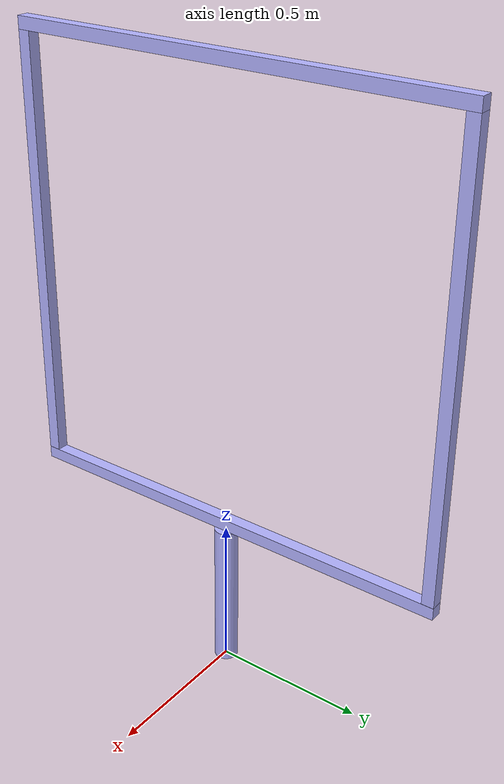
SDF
<?xml version="1.0" ?>
<sdf version="1.8">
<model name="window_on_post">

        <pose>0 0 0.25 0 0 0</pose>
        <static>true</static>

        <link name="base_ring_link">
            <pose>0 0 0 0 0 0</pose>
            <inertial>
                <mass>1.0</mass>
            </inertial>
            <collision name="collision">
                <geometry>
                    <cylinder>
                        <radius>0.038</radius>
                        <length>0.5</length>
                    </cylinder>
                </geometry>
            </collision>
            <visual name="visual">
                <geometry>
                    <cylinder>
                        <radius>0.038</radius>
                        <length>0.5</length>
                    </cylinder>
                </geometry>
                <material>
                    <ambient>0.7 0.7 1.0 1</ambient>
                    <diffuse>0.7 0.7 1.0 1</diffuse>
                    <specular>0.7 0.7 1.0 1</specular>
                </material>
            </visual>
        </link>

        <link name="top_beam">
            <pose>0 0 1.735 0 0 0</pose>
            <visual name="visual">
              <geometry>
                <box><size>0.04 1.5 0.04</size></box>
              </geometry>
              <material> <ambient>0.7 0.7 1.0 1</ambient>
                <diffuse>0.7 0.7 1.0 1</diffuse>
                <specular>0.7 0.7 1.0 1</specular>
              </material>
            </visual>
            <collision name="collision">
              <geometry><box><size>0.04 1.5 0.04</size></box></geometry>
            </collision>
        </link>

        <link name="bottom_beam">
            <pose>0 0 0.2746 0 0 0</pose>
            <visual name="visual">
              <geometry>
                <box><size>0.04 1.5 0.04</size></box>
              </geometry>
              <material>
                <ambient>0.7 0.7 1.0 1</ambient>
                <diffuse>0.7 0.7 1.0 1</diffuse>
                <specular>0.7 0.7 1.0 1</specular>
              </material>
            </visual>
            <collision name="collision">
              <geometry><box><size>0.04 1.5 0.04</size></box></geometry>
            </collision>
        </link>

        <link name="left_beam">
            <pose>0 0.73 1.005 0 0 0</pose>
            <visual name="visual">
              <geometry>
                <box><size>0.04 0.04 1.42</size></box>
              </geometry>
              <material>
                <ambient>0.7 0.7 1.0 1</ambient>
                <diffuse>0.7 0.7 1.0 1</diffuse>
                <specular>0.7 0.7 1.0 1</specular>
              </material>
            </visual>
            <collision name="collision">
              <geometry><box><size>0.04 0.04 1.42</size></box></geometry>
            </collision>
        </link>

        <link name="right_beam">
            <pose>0 -0.73 1.005 0 0 0</pose>
            <visual name="visual">
              <geometry>
                <box><size>0.04 0.04 1.42</size></box>
              </geometry>
              <material>
                <ambient>0.7 0.7 1.0 1</ambient>
                <diffuse>0.7 0.7 1.0 1</diffuse>
                <specular>0.7 0.7 1.0 1</specular>
              </material>
            </visual>
            <collision name="collision">
              <geometry><box><size>0.04 0.04 1.42</size></box></geometry>
            </collision>
        </link>
    </model>
</sdf>
